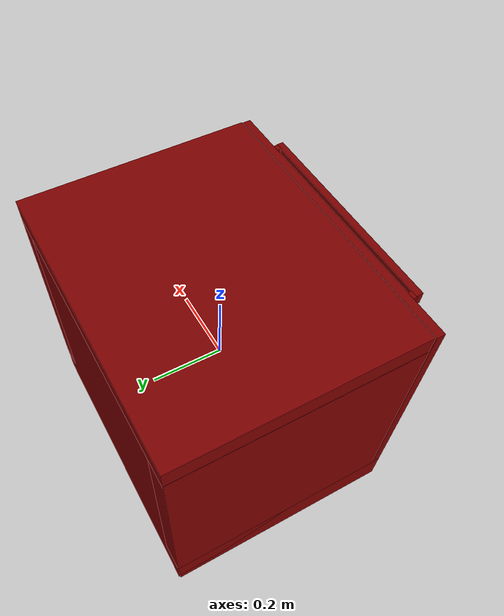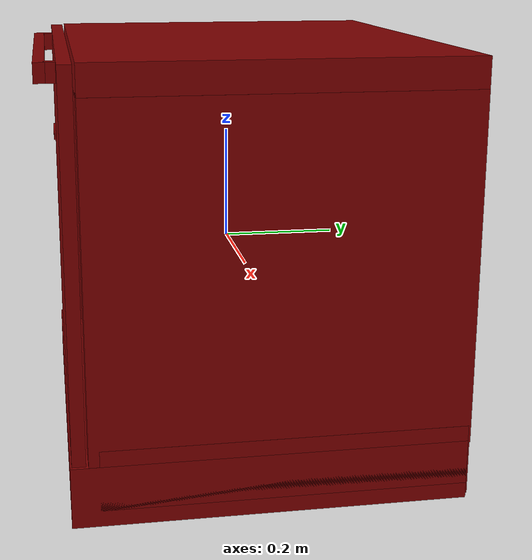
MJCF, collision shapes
<mujoco model="model">
  <compiler angle="radian"/>
  <asset>
    <mesh file="visuals/Body001.obj" name="Body001_vis"/>
    <mesh file="visuals/Button001.obj" name="Button001_vis"/>
    <mesh file="visuals/Container001.obj" name="Container001_vis"/>
    <mesh file="visuals/Container002.obj" name="Container002_vis"/>
    <mesh file="visuals/Door001.obj" name="Door001_vis"/>
    <texture file="visuals/T_BC001.png" name="Body001_material" type="2d"/>
    <material name="Body001_material" rgba="1 1 1 1.0" texture="Body001_material" shininess="0.4472135901451111" specular="0.3103448502657381"/>
    <texture file="visuals/T_BC001.png" name="Container001_material" type="2d"/>
    <material name="Container001_material" rgba="1 1 1 1.0" texture="Container001_material" shininess="0.4472135901451111" specular="0.3103448502657381"/>
    <texture file="visuals/T_BC001.png" name="Container002_material" type="2d"/>
    <material name="Container002_material" rgba="1 1 1 1.0" texture="Container002_material" shininess="0.4472135901451111" specular="0.3103448502657381"/>
    <texture file="visuals/T_BC001.png" name="Door001_material" type="2d"/>
    <material name="Door001_material" rgba="1 1 1 1.0" texture="Door001_material" shininess="0.4472135901451111" specular="0.3103448502657381"/>
    <texture file="visuals/T_BC001.png" name="Button001_material" type="2d"/>
    <material name="Button001_material" rgba="1 1 1 1.0" texture="Button001_material" shininess="1" specular="1"/>
  </asset>
  <default>
    <default class="visual">
      <geom conaffinity="0" contype="0" group="1" type="mesh"/>
    </default>
    <default class="collision">
      <geom group="0" rgba="0.5 0 0 0.5"/>
    </default>
    <default class="spawn">
      <geom group="0" rgba="1 1 1 0.5" contype="0" conaffinity="0"/>
      <site group="0" rgba="1 1 1 0.5"/>
    </default>
    <default class="region">
      <geom group="1" conaffinity="0" contype="0" rgba="0 1 0 0"/>
    </default>
  </default>
  <worldbody>
    <body>
      <body name="object">
        <geom mesh="Body001_vis" type="mesh" solimp="0.998 0.998 0.001" solref="0.001 1" density="100" friction="0.95 0.3 0.1" class="visual" material="Body001_material"/>
        <geom class="collision" type="box" pos="0.000294 0.030670 0.339265" size="0.4004681408405304 0.31508758664131165 0.029665101319551468" quat="1.0 0.0 0.0 0.0"/>
        <geom class="collision" type="box" pos="-0.000241 0.035146 -0.338476" size="0.27897462248802185 0.30687615275382996 0.02476627007126808" quat="1.0 0.0 0.0 0.0"/>
        <geom class="collision" type="box" pos="0.000337 0.292364 -0.026872" size="0.3975019156932831 0.05320807173848152 0.3363701105117798" quat="1.0 0.0 0.0 0.0"/>
        <geom class="collision" type="box" pos="-0.366328 0.030646 0.024285" size="0.0348767451941967 0.31504541635513306 0.29370251297950745" quat="1.0 0.0 0.0 0.0"/>
        <geom class="collision" type="box" pos="0.000696 0.014294 -0.317549" size="0.40063172578811646 0.32772815227508545 0.051380425691604614" quat="1.0 0.0 0.0 0.0"/>
        <geom class="collision" type="box" pos="0.366158 0.030632 0.024285" size="0.03500840440392494 0.3150593042373657 0.29370251297950745" quat="1.0 0.0 0.0 0.0"/>
        <geom class="collision" type="box" pos="0.000696 0.037530 -0.290734" size="0.40063172578811646 0.30449217557907104 0.05138042941689491" quat="1.0 0.0 0.0 0.0"/>
        <body name="Container001">
          <joint axis="0.0 -1.0 0.0" pos="-0.000079 -0.003197 -0.104013" limited="true" name="Container001_joint" range="0.0 0.15" type="slide" damping="1" frictionloss="1" armature=".01" stiffness="0.05"/>
          <geom mesh="Container001_vis" type="mesh" solimp="0.998 0.998 0.001" solref="0.001 1" density="100" friction="0.95 0.3 0.1" class="visual" material="Container001_material"/>
          <geom class="collision" type="box" pos="-0.000485 0.171034 -0.107369" size="0.307528555393219 0.01534122321754694 0.036782026290893555" quat="1.0 0.0 0.0 0.0"/>
          <geom class="collision" type="box" pos="-0.000819 -0.181019 -0.107817" size="0.30739498138427734 0.010748124681413174 0.03832223638892174" quat="1.0 0.0 0.0 0.0"/>
          <geom class="collision" type="box" pos="0.299934 0.000391 -0.107435" size="0.007130610290914774 0.17709128558635712 0.037665680050849915" quat="1.0 0.0 0.0 0.0"/>
          <geom class="collision" type="box" pos="0.001291 -0.000367 -0.138296" size="0.29866325855255127 0.17576567828655243 0.00722389854490757" quat="1.0 0.0 0.0 0.0"/>
          <geom class="collision" type="box" pos="-0.300887 -0.000121 -0.107099" size="0.007390982937067747 0.17709128558635712 0.03732965141534805" quat="1.0 0.0 0.0 0.0"/>
        </body>
        <body name="Container002">
          <joint axis="0.0 -1.0 0.0" pos="-0.000079 -0.003197 0.108257" limited="true" name="Container002_joint" range="0.0 0.15" type="slide" damping="1" frictionloss="1" armature=".01" stiffness="0.05"/>
          <geom mesh="Container002_vis" type="mesh" solimp="0.998 0.998 0.001" solref="0.001 1" density="100" friction="0.95 0.3 0.1" class="visual" material="Container002_material"/>
          <geom class="collision" type="box" pos="-0.300887 -0.000121 0.109393" size="0.007390982937067747 0.17709128558635712 0.03732965141534805" quat="1.0 0.0 0.0 0.0"/>
          <geom class="collision" type="box" pos="0.001291 -0.000367 0.078196" size="0.29866325855255127 0.17576567828655243 0.00722389854490757" quat="1.0 0.0 0.0 0.0"/>
          <geom class="collision" type="box" pos="0.299934 0.000391 0.109057" size="0.007130610290914774 0.17709128558635712 0.037665680050849915" quat="1.0 0.0 0.0 0.0"/>
          <geom class="collision" type="box" pos="-0.000819 -0.181019 0.108674" size="0.30739498138427734 0.010748124681413174 0.03832223638892174" quat="1.0 0.0 0.0 0.0"/>
          <geom class="collision" type="box" pos="-0.000485 0.171034 0.109123" size="0.307528555393219 0.01534122321754694 0.036782026290893555" quat="1.0 0.0 0.0 0.0"/>
        </body>
        <body name="Door001">
          <joint axis="1.0 0.0 0.0" pos="-0.000078 -0.313592 -0.264272" limited="true" name="Door001_joint" range="0.0 0.5235987755982988" type="hinge" damping="1" frictionloss="1" armature=".01" stiffness="0.2" springref="-3"/>
          <geom mesh="Door001_vis" type="mesh" solimp="0.998 0.998 0.001" solref="0.001 1" density="100" friction="0.95 0.3 0.1" class="visual" material="Door001_material"/>
          <geom class="collision" type="box" pos="-0.000096 -0.299647 0.051633" size="0.40123119950294495 0.011255170218646526 0.3148351311683655" quat="1.0 0.0 0.0 0.0"/>
          <geom class="collision" type="box" pos="0.277881 -0.319997 0.342374" size="0.009464925155043602 0.009404790587723255 0.016322888433933258" quat="1.0 0.0 0.0 0.0"/>
          <geom class="collision" type="box" pos="-0.281350 -0.319997 0.342374" size="0.009464933536946774 0.009404790587723255 0.016322888433933258" quat="1.0 0.0 0.0 0.0"/>
          <geom class="collision" type="box" pos="-0.000078 -0.336292 0.342374" size="0.2893316149711609 0.009464949369430542 0.016322888433933258" quat="1.0 0.0 0.0 0.0"/>
          <body name="Button001">
            <joint axis="0.0 1.0 0.0" pos="0.233788 -0.312531 0.242741" limited="true" name="Button001_joint" range="0.0 0.004" type="slide" damping="1" frictionloss="1" armature=".01" stiffness="0.05"/>
            <geom mesh="Button001_vis" type="mesh" solimp="0.998 0.998 0.001" solref="0.001 1" density="100" friction="0.95 0.3 0.1" class="visual" material="Button001_material"/>
            <geom class="collision" type="cylinder" pos="0.233785 -0.315136 0.242787" size="0.013120974414050579 0.0016503651859238744" quat="0.7071068286895752 0.7071067690849304 0.0 0.0"/>
          </body>
        </body>
        <geom class="region" name="reg_main" type="box" pos="-7.850000000000912e-05 0.016954499999999983 -0.0008974999999999955" size="0.3995925 0.3282795 0.3676415"/>
        <geom class="region" name="reg_int" type="box" pos="-0.0011545000000000027 -0.009320999999999996 0.020711499999999994" size="0.3265345 0.249157 0.2552775"/>
      </body>
    </body>
  </worldbody>
  <actuator>
    <motor name="Container001_joint_actuator" joint="Container001_joint" gear="10"/>
    <motor name="Container002_joint_actuator" joint="Container002_joint" gear="10"/>
    <motor name="Door001_joint_actuator" joint="Door001_joint" gear="50"/>
    <motor name="Button001_joint_actuator" joint="Button001_joint" gear="0.5"/>
  </actuator>
</mujoco>
